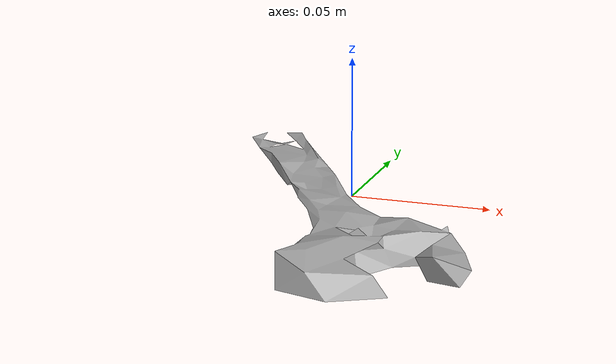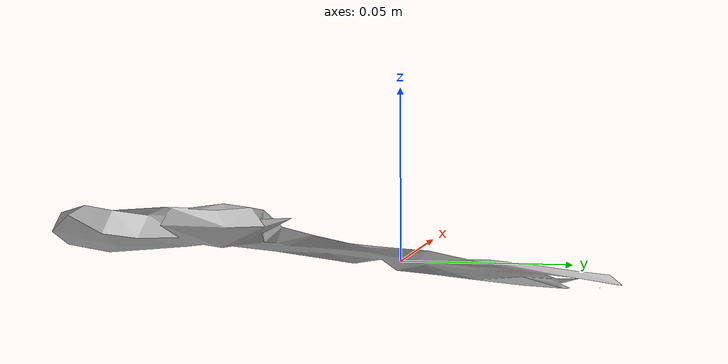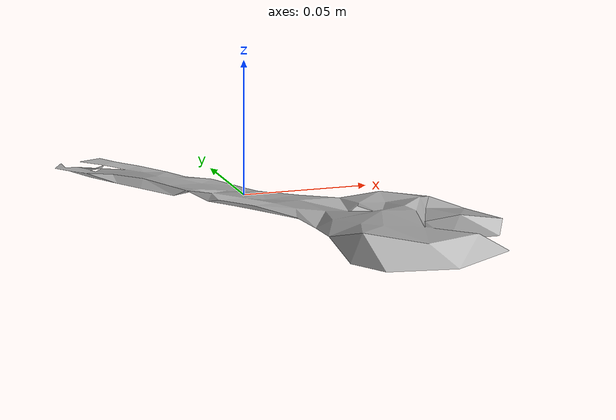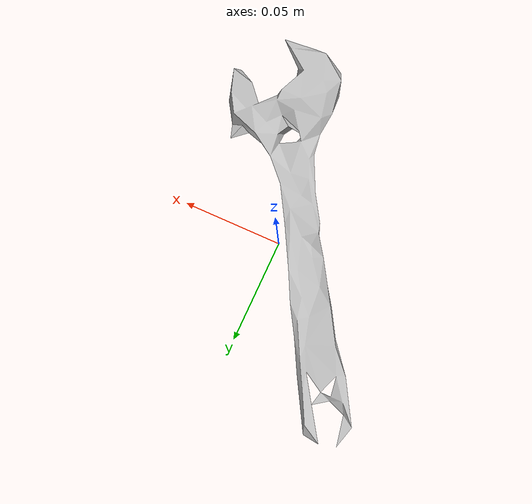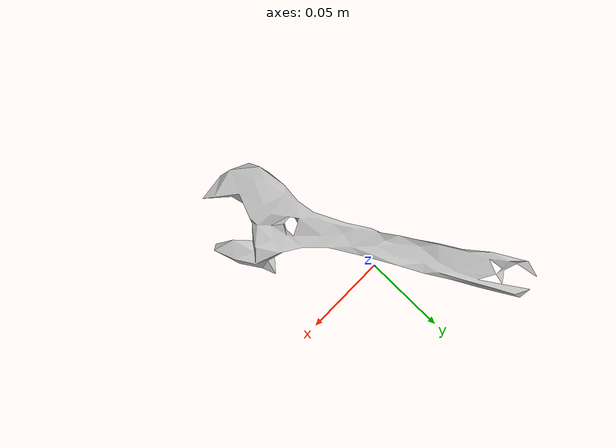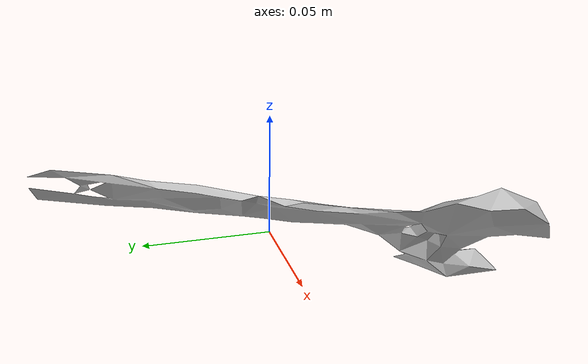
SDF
<?xml version='1.0'?>
<sdf version="1.4">
  <model name="042_adjustable_wrench">
    <static>false</static>
    <link name="link">
      <inertial>
        <pose>0.004394122473984437 -0.029187795827845253 0.0038120580855018904 -2.211833229968163 -1.5407010512443815 1.1765798595886838</pose>
        <mass>0.007743069666928448</mass>
        <inertia>
          <ixx>1.9202770269636296e-05</ixx>
          <ixy>-1.9566481283651962e-23</ixy>
          <ixz>-2.5243844885959843e-22</ixz>
          <iyy>1.786149257831683e-05</iyy>
          <iyz>3.5678722605670416e-23</iyz>
          <izz>1.474912373496289e-06</izz>
        </inertia>
      </inertial>
      <collision name="collision">
        <geometry>
          <mesh>
            <!-- Use a downsampled mesh for collisions -->
            <uri>model:///042_adjustable_wrench/042_adjustable_wrench_250_collision.stl</uri>
	        </mesh>
        </geometry>
        <surface>
      </surface>
      </collision>
      <visual name="visual">
        <geometry>
          <mesh>
            <uri>model:///042_adjustable_wrench/textured.obj</uri>
	        </mesh>
        </geometry>
        <material>
          <script>
            <uri>model:///042_adjustable_wrench/042_adjustable_wrench.material</uri>
            <name>042_adjustable_wrench</name>
          </script>
        </material>
      </visual>
    </link>
  </model>
</sdf>
